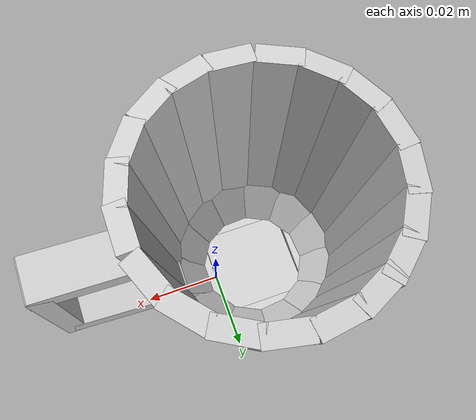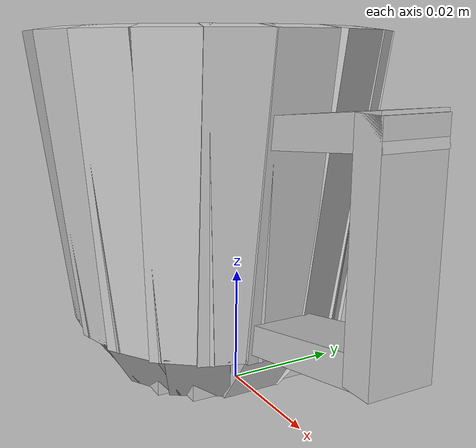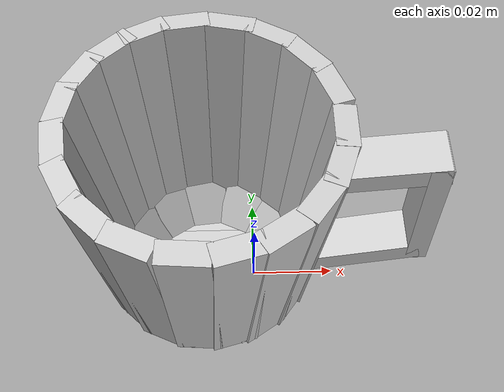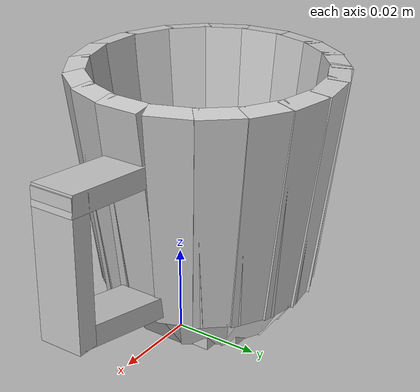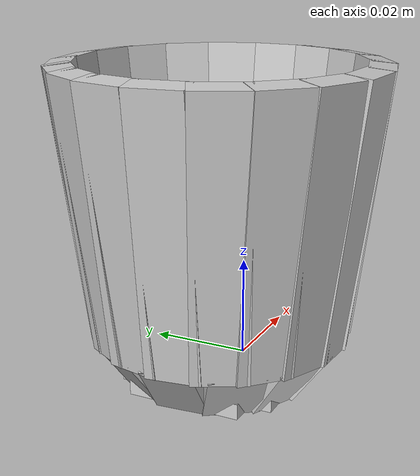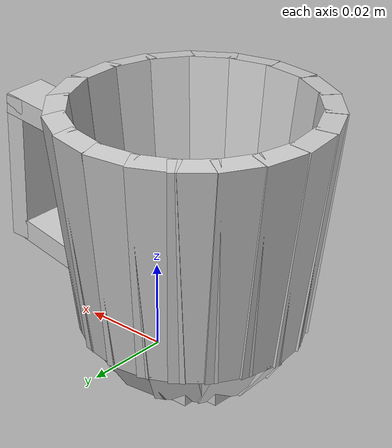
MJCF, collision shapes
<mujoco model="white_yellow_mug_small">
  <asset>
  <texture file="white_yellow_mug_texture.png" name="tex-white_yellow_mug" type="2d" />
  <material name="white_yellow_mug" reflectance="0.5" texrepeat="1 1" texture="tex-white_yellow_mug" texuniform="false" />
  <mesh file="visual/white_yellow_mug_vis.msh" name="white_yellow_mug_vis" scale="0.6 0.6 0.6" /></asset>
  <worldbody>
    <body>
      <body name="object">
      <geom solimp="0.998 0.998 0.001" solref="0.001 1" density="100" friction="0.95 0.3 0.1" type="mesh" mesh="white_yellow_mug_vis" conaffinity="0" contype="0" group="1" material="white_yellow_mug" /><geom solimp="0.998 0.998 0.001" solref="0.001 1" density="100" friction="0.95 0.3 0.1" type="box" pos="0.03844 -0.00000 0.03359" quat="1.00000 -0.00000 -0.00000 -0.00000" size="0.00247 0.00526 0.01754" group="0" rgba="0.8 0.8 0.8 0.3" /><geom solimp="0.998 0.998 0.001" solref="0.001 1" density="100" friction="0.95 0.3 0.1" type="box" pos="0.02413 0.00000 0.01577" quat="0.63072 0.00000 -0.77601 0.00000" size="0.00248 0.00526 0.01496" group="0" rgba="0.8 0.8 0.8 0.3" /><geom solimp="0.998 0.998 0.001" solref="0.001 1" density="100" friction="0.95 0.3 0.1" type="box" pos="0.02785 0.00000 0.04779" quat="0.74473 -0.00000 0.66737 -0.00000" size="0.00247 0.00526 0.01303" group="0" rgba="0.8 0.8 0.8 0.3" /><geom solimp="0.998 0.998 0.001" solref="0.001 1" density="100" friction="0.95 0.3 0.1" type="box" pos="0.01457 -0.00060 0.03560" quat="0.99786 -0.00000 0.06541 -0.00000" size="0.00247 0.00526 0.02617" group="0" rgba="0.8 0.8 0.8 0.3" /><geom solimp="0.998 0.998 0.001" solref="0.001 1" density="100" friction="0.95 0.3 0.1" type="box" pos="0.01301 0.00881 0.03560" quat="0.01223 0.98027 0.18655 -0.06426" size="0.00247 0.00526 0.02617" group="0" rgba="0.8 0.8 0.8 0.3" /><geom solimp="0.998 0.998 0.001" solref="0.001 1" density="100" friction="0.95 0.3 0.1" type="box" pos="0.00875 0.01621 0.03560" quat="0.02282 0.93515 0.34816 -0.06130" size="0.00247 0.00526 0.02617" group="0" rgba="0.8 0.8 0.8 0.3" /><geom solimp="0.998 0.998 0.001" solref="0.001 1" density="100" friction="0.95 0.3 0.1" type="box" pos="0.00230 0.02180 0.03560" quat="0.05661 0.49992 -0.86360 0.03277" size="0.00248 0.00526 0.02617" group="0" rgba="0.8 0.8 0.8 0.3" /><geom solimp="0.998 0.998 0.001" solref="0.001 1" density="100" friction="0.95 0.3 0.1" type="box" pos="-0.00521 0.02485 0.03560" quat="0.04134 0.77326 0.63070 -0.05069" size="0.00247 0.00526 0.02617" group="0" rgba="0.8 0.8 0.8 0.3" /><geom solimp="0.998 0.998 0.001" solref="0.001 1" density="100" friction="0.95 0.3 0.1" type="box" pos="-0.01393 0.02531 0.03560" quat="0.04942 0.65373 0.75390 -0.04285" size="0.00247 0.00526 0.02617" group="0" rgba="0.8 0.8 0.8 0.3" /><geom solimp="0.998 0.998 0.001" solref="0.001 1" density="100" friction="0.95 0.3 0.1" type="box" pos="-0.02168 0.02311 0.03560" quat="0.52640 -0.05557 0.03451 0.84772" size="0.00247 0.00526 0.02617" group="0" rgba="0.8 0.8 0.8 0.3" /><geom solimp="0.998 0.998 0.001" solref="0.001 1" density="100" friction="0.95 0.3 0.1" type="box" pos="-0.02756 0.01930 0.03560" quat="0.05978 0.40487 0.91203 -0.02654" size="0.00248 0.00526 0.02617" group="0" rgba="0.8 0.8 0.8 0.3" /><geom solimp="0.998 0.998 0.001" solref="0.001 1" density="100" friction="0.95 0.3 0.1" type="box" pos="-0.03266 0.01330 0.03560" quat="0.25900 -0.06317 0.01698 0.96366" size="0.00247 0.00526 0.02617" group="0" rgba="0.8 0.8 0.8 0.3" /><geom solimp="0.998 0.998 0.001" solref="0.001 1" density="100" friction="0.95 0.3 0.1" type="box" pos="-0.03571 0.00592 0.03560" quat="0.06505 0.10512 0.99231 -0.00689" size="0.00247 0.00526 0.02617" group="0" rgba="0.8 0.8 0.8 0.3" /><geom solimp="0.998 0.998 0.001" solref="0.001 1" density="100" friction="0.95 0.3 0.1" type="box" pos="-0.03626 -0.00270 0.03560" quat="0.06466 0.06527 0.00424 -0.99576" size="0.00248 0.00526 0.02617" group="0" rgba="0.8 0.8 0.8 0.3" /><geom solimp="0.998 0.998 0.001" solref="0.001 1" density="100" friction="0.95 0.3 0.1" type="box" pos="-0.03392 -0.01098 0.03560" quat="0.06362 -0.23170 0.97059 0.01519" size="0.00247 0.00526 0.02617" group="0" rgba="0.8 0.8 0.8 0.3" /><geom solimp="0.998 0.998 0.001" solref="0.001 1" density="100" friction="0.95 0.3 0.1" type="box" pos="-0.02918 -0.01778 0.03560" quat="0.38651 0.06030 0.02533 -0.91996" size="0.00248 0.00526 0.02617" group="0" rgba="0.8 0.8 0.8 0.3" /><geom solimp="0.998 0.998 0.001" solref="0.001 1" density="100" friction="0.95 0.3 0.1" type="box" pos="-0.02222 -0.02285 0.03560" quat="0.05516 -0.53632 0.84148 0.03516" size="0.00247 0.00526 0.02617" group="0" rgba="0.8 0.8 0.8 0.3" /><geom solimp="0.998 0.998 0.001" solref="0.001 1" density="100" friction="0.95 0.3 0.1" type="box" pos="-0.01332 -0.02538 0.03560" quat="0.68004 0.04787 0.04458 -0.73025" size="0.00248 0.00526 0.02617" group="0" rgba="0.8 0.8 0.8 0.3" /><geom solimp="0.998 0.998 0.001" solref="0.001 1" density="100" friction="0.95 0.3 0.1" type="box" pos="-0.00464 -0.02471 0.03560" quat="0.03955 -0.79478 0.60337 0.05210" size="0.00247 0.00526 0.02617" group="0" rgba="0.8 0.8 0.8 0.3" /><geom solimp="0.998 0.998 0.001" solref="0.001 1" density="100" friction="0.95 0.3 0.1" type="box" pos="0.00283 -0.02147 0.03560" quat="0.03072 -0.88092 0.46872 0.05775" size="0.00247 0.00526 0.02617" group="0" rgba="0.8 0.8 0.8 0.3" /><geom solimp="0.998 0.998 0.001" solref="0.001 1" density="100" friction="0.95 0.3 0.1" type="box" pos="0.00928 -0.01556 0.03560" quat="0.02035 -0.94832 0.31051 0.06216" size="0.00247 0.00526 0.02617" group="0" rgba="0.8 0.8 0.8 0.3" /><geom solimp="0.998 0.998 0.001" solref="0.001 1" density="100" friction="0.95 0.3 0.1" type="box" pos="0.01310 -0.00853 0.03560" quat="0.01035 -0.98528 0.15795 0.06459" size="0.00247 0.00526 0.02617" group="0" rgba="0.8 0.8 0.8 0.3" /><geom solimp="0.998 0.998 0.001" solref="0.001 1" density="100" friction="0.95 0.3 0.1" type="box" pos="0.00770 -0.00060 0.00636" quat="0.95039 -0.00000 0.31107 -0.00000" size="0.00244 0.00526 0.00617" group="0" rgba="0.8 0.8 0.8 0.3" /><geom solimp="0.998 0.998 0.001" solref="0.001 1" density="100" friction="0.95 0.3 0.1" type="box" pos="0.00482 0.00997 0.00636" quat="0.09140 0.90843 0.27925 -0.29735" size="0.00244 0.00526 0.00617" group="0" rgba="0.8 0.8 0.8 0.3" /><geom solimp="0.998 0.998 0.001" solref="0.001 1" density="100" friction="0.95 0.3 0.1" type="box" pos="-0.00215 0.01644 0.00636" quat="0.80691 -0.16435 0.26412 0.50212" size="0.00244 0.00526 0.00617" group="0" rgba="0.8 0.8 0.8 0.3" /><geom solimp="0.998 0.998 0.001" solref="0.001 1" density="100" friction="0.95 0.3 0.1" type="box" pos="-0.01217 0.01858 0.00636" quat="0.63771 -0.23063 0.20873 0.70468" size="0.00244 0.00526 0.00617" group="0" rgba="0.8 0.8 0.8 0.3" /><geom solimp="0.998 0.998 0.001" solref="0.001 1" density="100" friction="0.95 0.3 0.1" type="box" pos="-0.02040 0.01603 0.00636" quat="0.14973 0.83305 -0.45745 0.27267" size="0.00244 0.00526 0.00617" group="0" rgba="0.8 0.8 0.8 0.3" /><geom solimp="0.998 0.998 0.001" solref="0.001 1" density="100" friction="0.95 0.3 0.1" type="box" pos="-0.02729 0.00888 0.00636" quat="0.21896 -0.30271 0.07166 0.92482" size="0.00244 0.00526 0.00617" group="0" rgba="0.8 0.8 0.8 0.3" /><geom solimp="0.998 0.998 0.001" solref="0.001 1" density="100" friction="0.95 0.3 0.1" type="box" pos="-0.02953 -0.00066 0.00636" quat="0.01047 -0.94985 -0.03200 -0.31090" size="0.00244 0.00526 0.00617" group="0" rgba="0.8 0.8 0.8 0.3" /><geom solimp="0.998 0.998 0.001" solref="0.001 1" density="100" friction="0.95 0.3 0.1" type="box" pos="-0.02663 -0.01000 0.00636" quat="0.28029 0.29724 0.09175 -0.90811" size="0.00244 0.00526 0.00617" group="0" rgba="0.8 0.8 0.8 0.3" /><geom solimp="0.998 0.998 0.001" solref="0.001 1" density="100" friction="0.95 0.3 0.1" type="box" pos="-0.01955 -0.01651 0.00636" quat="0.26346 -0.50529 0.80493 0.16539" size="0.00244 0.00526 0.00617" group="0" rgba="0.8 0.8 0.8 0.3" /><geom solimp="0.998 0.998 0.001" solref="0.001 1" density="100" friction="0.95 0.3 0.1" type="box" pos="-0.01062 -0.01862 0.00636" quat="0.21464 -0.68791 0.65575 0.22518" size="0.00244 0.00526 0.00617" group="0" rgba="0.8 0.8 0.8 0.3" /><geom solimp="0.998 0.998 0.001" solref="0.001 1" density="100" friction="0.95 0.3 0.1" type="box" pos="-0.00181 -0.01625 0.00636" quat="0.82754 0.15297 0.27086 -0.46735" size="0.00244 0.00526 0.00617" group="0" rgba="0.8 0.8 0.8 0.3" /><geom solimp="0.998 0.998 0.001" solref="0.001 1" density="100" friction="0.95 0.3 0.1" type="box" pos="0.00481 -0.01000 0.00636" quat="0.91668 0.08211 0.30004 -0.25086" size="0.00244 0.00526 0.00617" group="0" rgba="0.8 0.8 0.8 0.3" /><geom solimp="0.998 0.998 0.001" solref="0.001 1" density="100" friction="0.95 0.3 0.1" type="box" pos="-0.01091 -0.00000 0.00164" quat="0.50000 0.50000 -0.50000 0.50000" size="0.00150 0.01117 0.01117" group="0" rgba="0.8 0.8 0.8 0.3" /><geom solimp="0.998 0.998 0.001" solref="0.001 1" density="100" friction="0.95 0.3 0.1" type="box" pos="-0.01091 -0.01326 0.00164" quat="0.70711 0.00000 0.70711 0.00000" size="0.00150 0.00230 0.01117" group="0" rgba="0.8 0.8 0.8 0.3" /><geom solimp="0.998 0.998 0.001" solref="0.001 1" density="100" friction="0.95 0.3 0.1" type="box" pos="-0.01091 0.01326 0.00164" quat="0.70711 0.00000 0.70711 0.00000" size="0.00150 0.00230 0.01117" group="0" rgba="0.8 0.8 0.8 0.3" /><geom solimp="0.998 0.998 0.001" solref="0.001 1" density="100" friction="0.95 0.3 0.1" type="box" pos="-0.02472 -0.00000 0.00164" quat="0.50359 -0.49638 0.50360 0.49638" size="0.00150 0.00230 0.01116" group="0" rgba="0.8 0.8 0.8 0.3" /><geom solimp="0.998 0.998 0.001" solref="0.001 1" density="100" friction="0.95 0.3 0.1" type="box" pos="0.00276 -0.00000 0.00164" quat="0.50359 -0.49638 0.50360 0.49638" size="0.00150 0.00230 0.01116" group="0" rgba="0.8 0.8 0.8 0.3" /></body>
      <site rgba="0 0 0 0" size="0.00300" pos="0.00000 0.00000 -0.03600" name="bottom_site" />
      <site rgba="0 0 0 0" size="0.00300" pos="0.00000 0.00000 0.02400" name="top_site" />
      <!-- robosuite placement uses only site pos[0] as XY radius; was 0.025 (too small → overlapping spawns). -->
      <site rgba="0 0 0 0" size="0.00300" pos="0.04800 0.04800 0.00000" name="horizontal_radius_site" />
    </body>
  </worldbody>
</mujoco>
